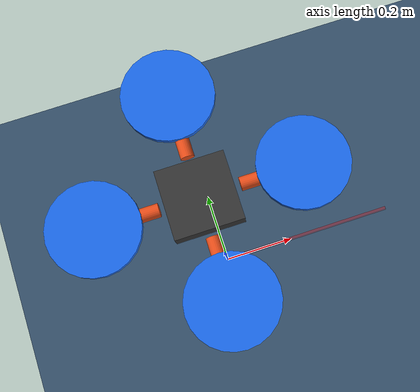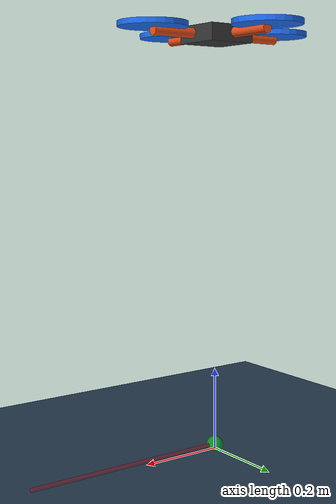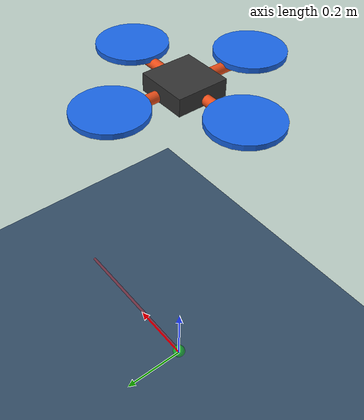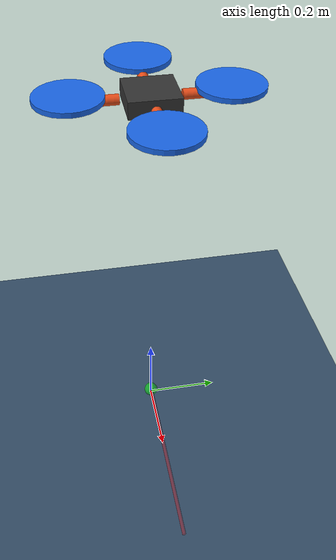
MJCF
<mujoco model="quadrotor_online">
  <compiler angle="radian" coordinate="local" inertiafromgeom="false"/>

  <option timestep="0.002" gravity="0 0 -9.81" integrator="RK4">
    <flag warmstart="enable"/>
  </option>

  <visual>
    <global offwidth="1280" offheight="960"/>
    <quality shadowsize="4096"/>
    <map force="0.1" fogstart="10" fogend="15"/>
    <headlight ambient="0.6 0.6 0.6" diffuse="0.9 0.9 0.9" specular="0.4 0.4 0.4"/>
  </visual>

  <asset>
    <texture type="skybox" builtin="gradient" rgb1="0.4 0.6 0.8" rgb2="0.1 0.1 0.2" width="512" height="3072"/>
    <texture type="2d" name="groundplane" builtin="checker" mark="edge" rgb1="0.25 0.35 0.45" rgb2="0.15 0.25 0.35"
      markrgb="0.8 0.8 0.8" width="300" height="300"/>
    <material name="groundplane" texture="groundplane" texuniform="true" texrepeat="10 10" reflectance="0.2"/>

    <!-- Quadrotor materials -->
    <material name="body_mat" rgba="0.2 0.2 0.2 1"/>
    <material name="rotor_mat" rgba="0.1 0.4 0.9 0.9"/>
    <material name="arm_mat" rgba="0.9 0.3 0.1 1"/>
    <material name="target_mat" rgba="0.1 0.9 0.2 0.7"/>
    <material name="trajectory_mat" rgba="1 0.6 0.1 0.8"/>
  </asset>

  <worldbody>
    <light pos="0 0 10" dir="0 0 -1" directional="true" diffuse="0.8 0.8 0.8"/>
    <light pos="5 5 8" dir="-0.5 -0.5 -1" directional="false" diffuse="0.4 0.4 0.4"/>
    <geom name="floor" size="0 0 0.05" type="plane" material="groundplane" friction="1.0 0.01 0.001"/>

    <!-- Visual reference marks -->
    <body name="reference" pos="0 0 0.01">
      <geom name="origin" type="sphere" size="0.02" rgba="0 1 0 0.5" contype="0" conaffinity="0"/>
      <geom name="x_axis" type="cylinder" fromto="0 0 0 0.5 0 0" size="0.005" rgba="1 0 0 0.3" contype="0" conaffinity="0"/>
    </body>

    <!-- Quadrotor body -->
    <body name="quadrotor" pos="0 0 1">
      <freejoint name="root"/>

      <!-- Inertial properties matching task.info parameters -->
      <!-- Mass: 0.546 kg, Ixx=Iyy=2.32e-3, Izz=3e-4 -->
      <inertial pos="0 0 0" mass="0.546"
                diaginertia="2.32e-3 2.32e-3 3e-4"/>

      <!-- Core body -->
      <geom name="core" type="box" size="0.06 0.06 0.02" material="body_mat"
            contype="1" conaffinity="1" mass="0"/>

      <!-- Arms and rotors (visual only, mass already in inertial) -->
      <!-- Front arm (X+) -->
      <geom name="arm_front" type="cylinder" fromto="0.07 0 0 0.18 0 0"
            size="0.012" material="arm_mat" mass="0"/>
      <geom name="rotor_front" type="cylinder" pos="0.18 0 0.012"
            size="0.08 0.006" material="rotor_mat" mass="0"/>

      <!-- Back arm (X-) -->
      <geom name="arm_back" type="cylinder" fromto="-0.07 0 0 -0.18 0 0"
            size="0.012" material="arm_mat" mass="0"/>
      <geom name="rotor_back" type="cylinder" pos="-0.18 0 0.012"
            size="0.08 0.006" material="rotor_mat" mass="0"/>

      <!-- Right arm (Y+) -->
      <geom name="arm_right" type="cylinder" fromto="0 0.07 0 0 0.18 0"
            size="0.012" material="arm_mat" mass="0"/>
      <geom name="rotor_right" type="cylinder" pos="0 0.18 0.012"
            size="0.08 0.006" material="rotor_mat" mass="0"/>

      <!-- Left arm (Y-) -->
      <geom name="arm_left" type="cylinder" fromto="0 -0.07 0 0 -0.18 0"
            size="0.012" material="arm_mat" mass="0"/>
      <geom name="rotor_left" type="cylinder" pos="0 -0.18 0.012"
            size="0.08 0.006" material="rotor_mat" mass="0"/>

      <!-- Onboard camera -->
      <camera name="onboard" pos="0.1 0 0" euler="0 0 0" fovy="90"/>
    </body>
  </worldbody>
</mujoco>
